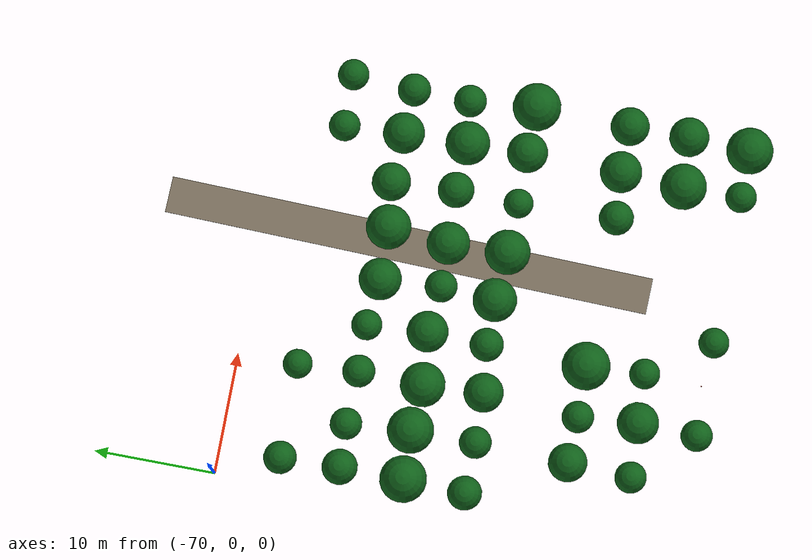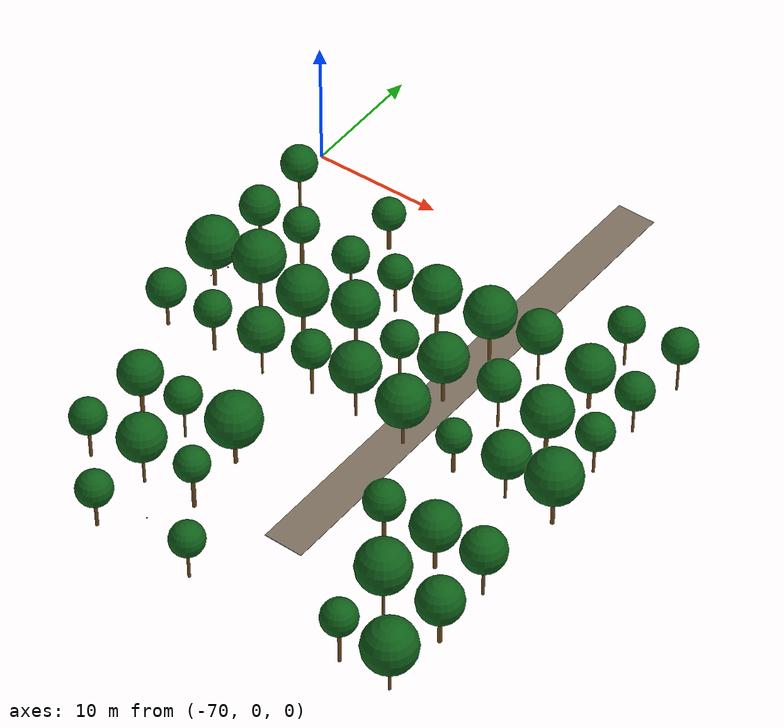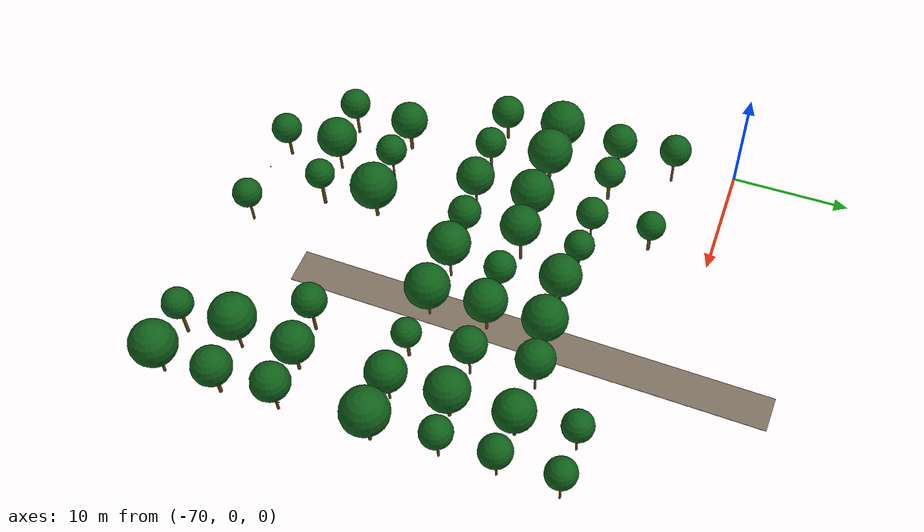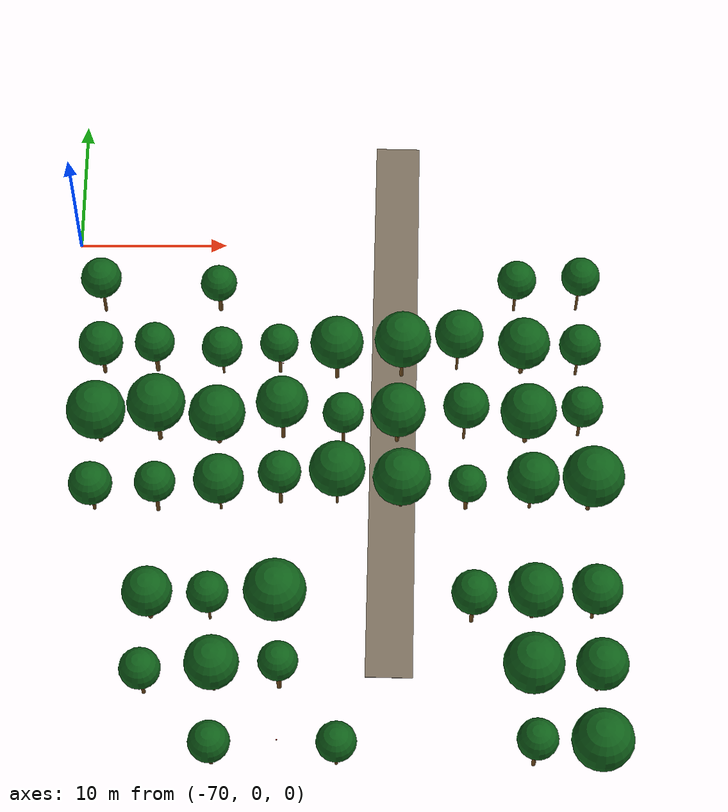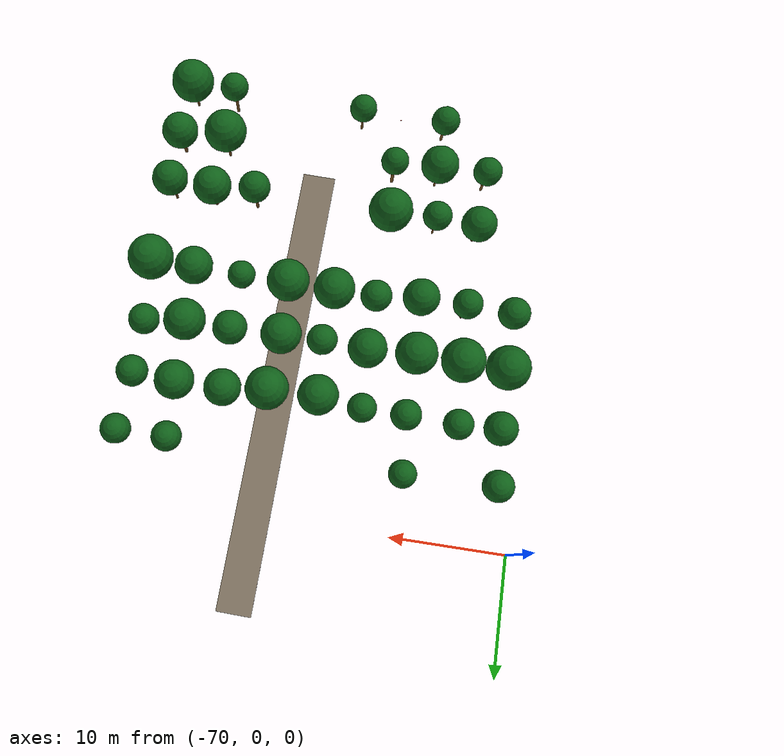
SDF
<sdf version="1.9">
 <world name="cheongsong_orchard">
  <model name="road_15">
   <static>true</static>
   <pose>-48.6 -12.1 0.02 0 0 -1.5989</pose>
   <link name="link">
    <collision name="collision">
     <geometry><box><size>40.5 3.0 0.04</size></box></geometry>
     <surface><friction><ode><mu>0.9</mu><mu2>0.9</mu2></ode></friction></surface>
    </collision>
    <visual name="visual">
     <geometry><box><size>40.5 3.0 0.04</size></box></geometry>
     <material><ambient>0.4 0.35 0.28 1</ambient><diffuse>0.5 0.45 0.38 1</diffuse></material>
    </visual>
   </link>
  </model>
  <model name="apple_tree_849">
   <static>true</static>
   <pose>-60.13 -37.95 0 0 0 0</pose>
   <link name="link">
    <collision name="trunk_col">
     <pose>0 0 1.08 0 0 0</pose>
     <geometry><cylinder><radius>0.122</radius><length>2.16</length></cylinder></geometry>
    </collision>
    <visual name="trunk_vis">
     <pose>0 0 1.08 0 0 0</pose>
     <geometry><cylinder><radius>0.122</radius><length>2.16</length></cylinder></geometry>
     <material><ambient>0.35 0.22 0.08 1</ambient><diffuse>0.45 0.30 0.12 1</diffuse></material>
    </visual>
    <collision name="canopy_col">
     <pose>0 0 3.46 0 0 0</pose>
     <geometry><sphere><radius>1.30</radius></sphere></geometry>
    </collision>
    <visual name="canopy_vis">
     <pose>0 0 3.46 0 0 0</pose>
     <geometry><sphere><radius>1.30</radius></sphere></geometry>
     <material><ambient>0.04 0.28 0.06 1</ambient><diffuse>0.06 0.38 0.10 1</diffuse></material>
    </visual>
   </link>
  </model>
  <model name="apple_tree_851">
   <static>true</static>
   <pose>-52.45 -38.02 0 0 0 0</pose>
   <link name="link">
    <collision name="trunk_col">
     <pose>0 0 1.16 0 0 0</pose>
     <geometry><cylinder><radius>0.103</radius><length>2.32</length></cylinder></geometry>
    </collision>
    <visual name="trunk_vis">
     <pose>0 0 1.16 0 0 0</pose>
     <geometry><cylinder><radius>0.103</radius><length>2.32</length></cylinder></geometry>
     <material><ambient>0.35 0.22 0.08 1</ambient><diffuse>0.45 0.30 0.12 1</diffuse></material>
    </visual>
    <collision name="canopy_col">
     <pose>0 0 3.57 0 0 0</pose>
     <geometry><sphere><radius>1.25</radius></sphere></geometry>
    </collision>
    <visual name="canopy_vis">
     <pose>0 0 3.57 0 0 0</pose>
     <geometry><sphere><radius>1.25</radius></sphere></geometry>
     <material><ambient>0.04 0.28 0.06 1</ambient><diffuse>0.06 0.38 0.10 1</diffuse></material>
    </visual>
   </link>
  </model>
  <model name="apple_tree_854">
   <static>true</static>
   <pose>-40.36 -38.10 0 0 0 0</pose>
   <link name="link">
    <collision name="trunk_col">
     <pose>0 0 1.42 0 0 0</pose>
     <geometry><cylinder><radius>0.130</radius><length>2.84</length></cylinder></geometry>
    </collision>
    <visual name="trunk_vis">
     <pose>0 0 1.42 0 0 0</pose>
     <geometry><cylinder><radius>0.130</radius><length>2.84</length></cylinder></geometry>
     <material><ambient>0.35 0.22 0.08 1</ambient><diffuse>0.45 0.30 0.12 1</diffuse></material>
    </visual>
    <collision name="canopy_col">
     <pose>0 0 4.12 0 0 0</pose>
     <geometry><sphere><radius>1.28</radius></sphere></geometry>
    </collision>
    <visual name="canopy_vis">
     <pose>0 0 4.12 0 0 0</pose>
     <geometry><sphere><radius>1.28</radius></sphere></geometry>
     <material><ambient>0.04 0.28 0.06 1</ambient><diffuse>0.06 0.38 0.10 1</diffuse></material>
    </visual>
   </link>
  </model>
  <model name="apple_tree_855">
   <static>true</static>
   <pose>-36.45 -38.15 0 0 0 0</pose>
   <link name="link">
    <collision name="trunk_col">
     <pose>0 0 1.10 0 0 0</pose>
     <geometry><cylinder><radius>0.111</radius><length>2.19</length></cylinder></geometry>
    </collision>
    <visual name="trunk_vis">
     <pose>0 0 1.10 0 0 0</pose>
     <geometry><cylinder><radius>0.111</radius><length>2.19</length></cylinder></geometry>
     <material><ambient>0.35 0.22 0.08 1</ambient><diffuse>0.45 0.30 0.12 1</diffuse></material>
    </visual>
    <collision name="canopy_col">
     <pose>0 0 4.11 0 0 0</pose>
     <geometry><sphere><radius>1.92</radius></sphere></geometry>
    </collision>
    <visual name="canopy_vis">
     <pose>0 0 4.11 0 0 0</pose>
     <geometry><sphere><radius>1.92</radius></sphere></geometry>
     <material><ambient>0.04 0.28 0.06 1</ambient><diffuse>0.06 0.38 0.10 1</diffuse></material>
    </visual>
   </link>
  </model>
  <model name="apple_tree_903">
   <static>true</static>
   <pose>-64.45 -33.28 0 0 0 0</pose>
   <link name="link">
    <collision name="trunk_col">
     <pose>0 0 1.21 0 0 0</pose>
     <geometry><cylinder><radius>0.117</radius><length>2.42</length></cylinder></geometry>
    </collision>
    <visual name="trunk_vis">
     <pose>0 0 1.21 0 0 0</pose>
     <geometry><cylinder><radius>0.117</radius><length>2.42</length></cylinder></geometry>
     <material><ambient>0.35 0.22 0.08 1</ambient><diffuse>0.45 0.30 0.12 1</diffuse></material>
    </visual>
    <collision name="canopy_col">
     <pose>0 0 3.72 0 0 0</pose>
     <geometry><sphere><radius>1.30</radius></sphere></geometry>
    </collision>
    <visual name="canopy_vis">
     <pose>0 0 3.72 0 0 0</pose>
     <geometry><sphere><radius>1.30</radius></sphere></geometry>
     <material><ambient>0.04 0.28 0.06 1</ambient><diffuse>0.06 0.38 0.10 1</diffuse></material>
    </visual>
   </link>
  </model>
  <model name="apple_tree_904">
   <static>true</static>
   <pose>-60.06 -33.08 0 0 0 0</pose>
   <link name="link">
    <collision name="trunk_col">
     <pose>0 0 1.23 0 0 0</pose>
     <geometry><cylinder><radius>0.100</radius><length>2.47</length></cylinder></geometry>
    </collision>
    <visual name="trunk_vis">
     <pose>0 0 1.23 0 0 0</pose>
     <geometry><cylinder><radius>0.100</radius><length>2.47</length></cylinder></geometry>
     <material><ambient>0.35 0.22 0.08 1</ambient><diffuse>0.45 0.30 0.12 1</diffuse></material>
    </visual>
    <collision name="canopy_col">
     <pose>0 0 4.17 0 0 0</pose>
     <geometry><sphere><radius>1.70</radius></sphere></geometry>
    </collision>
    <visual name="canopy_vis">
     <pose>0 0 4.17 0 0 0</pose>
     <geometry><sphere><radius>1.70</radius></sphere></geometry>
     <material><ambient>0.04 0.28 0.06 1</ambient><diffuse>0.06 0.38 0.10 1</diffuse></material>
    </visual>
   </link>
  </model>
  <model name="apple_tree_905">
   <static>true</static>
   <pose>-56.01 -32.92 0 0 0 0</pose>
   <link name="link">
    <collision name="trunk_col">
     <pose>0 0 1.37 0 0 0</pose>
     <geometry><cylinder><radius>0.146</radius><length>2.74</length></cylinder></geometry>
    </collision>
    <visual name="trunk_vis">
     <pose>0 0 1.37 0 0 0</pose>
     <geometry><cylinder><radius>0.146</radius><length>2.74</length></cylinder></geometry>
     <material><ambient>0.35 0.22 0.08 1</ambient><diffuse>0.45 0.30 0.12 1</diffuse></material>
    </visual>
    <collision name="canopy_col">
     <pose>0 0 3.99 0 0 0</pose>
     <geometry><sphere><radius>1.25</radius></sphere></geometry>
    </collision>
    <visual name="canopy_vis">
     <pose>0 0 3.99 0 0 0</pose>
     <geometry><sphere><radius>1.25</radius></sphere></geometry>
     <material><ambient>0.04 0.28 0.06 1</ambient><diffuse>0.06 0.38 0.10 1</diffuse></material>
    </visual>
   </link>
  </model>
  <model name="apple_tree_906">
   <static>true</static>
   <pose>-40.42 -33.32 0 0 0 0</pose>
   <link name="link">
    <collision name="trunk_col">
     <pose>0 0 1.31 0 0 0</pose>
     <geometry><cylinder><radius>0.115</radius><length>2.63</length></cylinder></geometry>
    </collision>
    <visual name="trunk_vis">
     <pose>0 0 1.31 0 0 0</pose>
     <geometry><cylinder><radius>0.115</radius><length>2.63</length></cylinder></geometry>
     <material><ambient>0.35 0.22 0.08 1</ambient><diffuse>0.45 0.30 0.12 1</diffuse></material>
    </visual>
    <collision name="canopy_col">
     <pose>0 0 4.53 0 0 0</pose>
     <geometry><sphere><radius>1.90</radius></sphere></geometry>
    </collision>
    <visual name="canopy_vis">
     <pose>0 0 4.53 0 0 0</pose>
     <geometry><sphere><radius>1.90</radius></sphere></geometry>
     <material><ambient>0.04 0.28 0.06 1</ambient><diffuse>0.06 0.38 0.10 1</diffuse></material>
    </visual>
   </link>
  </model>
  <model name="apple_tree_907">
   <static>true</static>
   <pose>-36.18 -33.11 0 0 0 0</pose>
   <link name="link">
    <collision name="trunk_col">
     <pose>0 0 1.12 0 0 0</pose>
     <geometry><cylinder><radius>0.148</radius><length>2.24</length></cylinder></geometry>
    </collision>
    <visual name="trunk_vis">
     <pose>0 0 1.12 0 0 0</pose>
     <geometry><cylinder><radius>0.148</radius><length>2.24</length></cylinder></geometry>
     <material><ambient>0.35 0.22 0.08 1</ambient><diffuse>0.45 0.30 0.12 1</diffuse></material>
    </visual>
    <collision name="canopy_col">
     <pose>0 0 3.87 0 0 0</pose>
     <geometry><sphere><radius>1.63</radius></sphere></geometry>
    </collision>
    <visual name="canopy_vis">
     <pose>0 0 3.87 0 0 0</pose>
     <geometry><sphere><radius>1.63</radius></sphere></geometry>
     <material><ambient>0.04 0.28 0.06 1</ambient><diffuse>0.06 0.38 0.10 1</diffuse></material>
    </visual>
   </link>
  </model>
  <model name="apple_tree_955">
   <static>true</static>
   <pose>-64.20 -28.08 0 0 0 0</pose>
   <link name="link">
    <collision name="trunk_col">
     <pose>0 0 1.06 0 0 0</pose>
     <geometry><cylinder><radius>0.150</radius><length>2.12</length></cylinder></geometry>
    </collision>
    <visual name="trunk_vis">
     <pose>0 0 1.06 0 0 0</pose>
     <geometry><cylinder><radius>0.150</radius><length>2.12</length></cylinder></geometry>
     <material><ambient>0.35 0.22 0.08 1</ambient><diffuse>0.45 0.30 0.12 1</diffuse></material>
    </visual>
    <collision name="canopy_col">
     <pose>0 0 3.72 0 0 0</pose>
     <geometry><sphere><radius>1.59</radius></sphere></geometry>
    </collision>
    <visual name="canopy_vis">
     <pose>0 0 3.72 0 0 0</pose>
     <geometry><sphere><radius>1.59</radius></sphere></geometry>
     <material><ambient>0.04 0.28 0.06 1</ambient><diffuse>0.06 0.38 0.10 1</diffuse></material>
    </visual>
   </link>
  </model>
  <model name="apple_tree_956">
   <static>true</static>
   <pose>-60.43 -28.23 0 0 0 0</pose>
   <link name="link">
    <collision name="trunk_col">
     <pose>0 0 1.30 0 0 0</pose>
     <geometry><cylinder><radius>0.086</radius><length>2.59</length></cylinder></geometry>
    </collision>
    <visual name="trunk_vis">
     <pose>0 0 1.30 0 0 0</pose>
     <geometry><cylinder><radius>0.086</radius><length>2.59</length></cylinder></geometry>
     <material><ambient>0.35 0.22 0.08 1</ambient><diffuse>0.45 0.30 0.12 1</diffuse></material>
    </visual>
    <collision name="canopy_col">
     <pose>0 0 3.91 0 0 0</pose>
     <geometry><sphere><radius>1.31</radius></sphere></geometry>
    </collision>
    <visual name="canopy_vis">
     <pose>0 0 3.91 0 0 0</pose>
     <geometry><sphere><radius>1.31</radius></sphere></geometry>
     <material><ambient>0.04 0.28 0.06 1</ambient><diffuse>0.06 0.38 0.10 1</diffuse></material>
    </visual>
   </link>
  </model>
  <model name="apple_tree_957">
   <static>true</static>
   <pose>-56.25 -28.14 0 0 0 0</pose>
   <link name="link">
    <collision name="trunk_col">
     <pose>0 0 1.02 0 0 0</pose>
     <geometry><cylinder><radius>0.145</radius><length>2.05</length></cylinder></geometry>
    </collision>
    <visual name="trunk_vis">
     <pose>0 0 1.02 0 0 0</pose>
     <geometry><cylinder><radius>0.145</radius><length>2.05</length></cylinder></geometry>
     <material><ambient>0.35 0.22 0.08 1</ambient><diffuse>0.45 0.30 0.12 1</diffuse></material>
    </visual>
    <collision name="canopy_col">
     <pose>0 0 4.03 0 0 0</pose>
     <geometry><sphere><radius>1.98</radius></sphere></geometry>
    </collision>
    <visual name="canopy_vis">
     <pose>0 0 4.03 0 0 0</pose>
     <geometry><sphere><radius>1.98</radius></sphere></geometry>
     <material><ambient>0.04 0.28 0.06 1</ambient><diffuse>0.06 0.38 0.10 1</diffuse></material>
    </visual>
   </link>
  </model>
  <model name="apple_tree_958">
   <static>true</static>
   <pose>-43.90 -28.42 0 0 0 0</pose>
   <link name="link">
    <collision name="trunk_col">
     <pose>0 0 1.38 0 0 0</pose>
     <geometry><cylinder><radius>0.131</radius><length>2.77</length></cylinder></geometry>
    </collision>
    <visual name="trunk_vis">
     <pose>0 0 1.38 0 0 0</pose>
     <geometry><cylinder><radius>0.131</radius><length>2.77</length></cylinder></geometry>
     <material><ambient>0.35 0.22 0.08 1</ambient><diffuse>0.45 0.30 0.12 1</diffuse></material>
    </visual>
    <collision name="canopy_col">
     <pose>0 0 4.19 0 0 0</pose>
     <geometry><sphere><radius>1.42</radius></sphere></geometry>
    </collision>
    <visual name="canopy_vis">
     <pose>0 0 4.19 0 0 0</pose>
     <geometry><sphere><radius>1.42</radius></sphere></geometry>
     <material><ambient>0.04 0.28 0.06 1</ambient><diffuse>0.06 0.38 0.10 1</diffuse></material>
    </visual>
   </link>
  </model>
  <model name="apple_tree_959">
   <static>true</static>
   <pose>-40.06 -28.14 0 0 0 0</pose>
   <link name="link">
    <collision name="trunk_col">
     <pose>0 0 1.11 0 0 0</pose>
     <geometry><cylinder><radius>0.135</radius><length>2.22</length></cylinder></geometry>
    </collision>
    <visual name="trunk_vis">
     <pose>0 0 1.11 0 0 0</pose>
     <geometry><cylinder><radius>0.135</radius><length>2.22</length></cylinder></geometry>
     <material><ambient>0.35 0.22 0.08 1</ambient><diffuse>0.45 0.30 0.12 1</diffuse></material>
    </visual>
    <collision name="canopy_col">
     <pose>0 0 3.93 0 0 0</pose>
     <geometry><sphere><radius>1.72</radius></sphere></geometry>
    </collision>
    <visual name="canopy_vis">
     <pose>0 0 3.93 0 0 0</pose>
     <geometry><sphere><radius>1.72</radius></sphere></geometry>
     <material><ambient>0.04 0.28 0.06 1</ambient><diffuse>0.06 0.38 0.10 1</diffuse></material>
    </visual>
   </link>
  </model>
  <model name="apple_tree_960">
   <static>true</static>
   <pose>-36.25 -28.20 0 0 0 0</pose>
   <link name="link">
    <collision name="trunk_col">
     <pose>0 0 1.27 0 0 0</pose>
     <geometry><cylinder><radius>0.108</radius><length>2.54</length></cylinder></geometry>
    </collision>
    <visual name="trunk_vis">
     <pose>0 0 1.27 0 0 0</pose>
     <geometry><cylinder><radius>0.108</radius><length>2.54</length></cylinder></geometry>
     <material><ambient>0.35 0.22 0.08 1</ambient><diffuse>0.45 0.30 0.12 1</diffuse></material>
    </visual>
    <collision name="canopy_col">
     <pose>0 0 4.13 0 0 0</pose>
     <geometry><sphere><radius>1.59</radius></sphere></geometry>
    </collision>
    <visual name="canopy_vis">
     <pose>0 0 4.13 0 0 0</pose>
     <geometry><sphere><radius>1.59</radius></sphere></geometry>
     <material><ambient>0.04 0.28 0.06 1</ambient><diffuse>0.06 0.38 0.10 1</diffuse></material>
    </visual>
   </link>
  </model>
  <model name="apple_tree_1011">
   <static>true</static>
   <pose>-68.12 -20.35 0 0 0 0</pose>
   <link name="link">
    <collision name="trunk_col">
     <pose>0 0 1.02 0 0 0</pose>
     <geometry><cylinder><radius>0.112</radius><length>2.04</length></cylinder></geometry>
    </collision>
    <visual name="trunk_vis">
     <pose>0 0 1.02 0 0 0</pose>
     <geometry><cylinder><radius>0.112</radius><length>2.04</length></cylinder></geometry>
     <material><ambient>0.35 0.22 0.08 1</ambient><diffuse>0.45 0.30 0.12 1</diffuse></material>
    </visual>
    <collision name="canopy_col">
     <pose>0 0 3.45 0 0 0</pose>
     <geometry><sphere><radius>1.41</radius></sphere></geometry>
    </collision>
    <visual name="canopy_vis">
     <pose>0 0 3.45 0 0 0</pose>
     <geometry><sphere><radius>1.41</radius></sphere></geometry>
     <material><ambient>0.04 0.28 0.06 1</ambient><diffuse>0.06 0.38 0.10 1</diffuse></material>
    </visual>
   </link>
  </model>
  <model name="apple_tree_1012">
   <static>true</static>
   <pose>-63.98 -20.46 0 0 0 0</pose>
   <link name="link">
    <collision name="trunk_col">
     <pose>0 0 1.28 0 0 0</pose>
     <geometry><cylinder><radius>0.122</radius><length>2.55</length></cylinder></geometry>
    </collision>
    <visual name="trunk_vis">
     <pose>0 0 1.28 0 0 0</pose>
     <geometry><cylinder><radius>0.122</radius><length>2.55</length></cylinder></geometry>
     <material><ambient>0.35 0.22 0.08 1</ambient><diffuse>0.45 0.30 0.12 1</diffuse></material>
    </visual>
    <collision name="canopy_col">
     <pose>0 0 3.87 0 0 0</pose>
     <geometry><sphere><radius>1.32</radius></sphere></geometry>
    </collision>
    <visual name="canopy_vis">
     <pose>0 0 3.87 0 0 0</pose>
     <geometry><sphere><radius>1.32</radius></sphere></geometry>
     <material><ambient>0.04 0.28 0.06 1</ambient><diffuse>0.06 0.38 0.10 1</diffuse></material>
    </visual>
   </link>
  </model>
  <model name="apple_tree_1013">
   <static>true</static>
   <pose>-59.91 -20.39 0 0 0 0</pose>
   <link name="link">
    <collision name="trunk_col">
     <pose>0 0 1.25 0 0 0</pose>
     <geometry><cylinder><radius>0.081</radius><length>2.50</length></cylinder></geometry>
    </collision>
    <visual name="trunk_vis">
     <pose>0 0 1.25 0 0 0</pose>
     <geometry><cylinder><radius>0.081</radius><length>2.50</length></cylinder></geometry>
     <material><ambient>0.35 0.22 0.08 1</ambient><diffuse>0.45 0.30 0.12 1</diffuse></material>
    </visual>
    <collision name="canopy_col">
     <pose>0 0 4.12 0 0 0</pose>
     <geometry><sphere><radius>1.62</radius></sphere></geometry>
    </collision>
    <visual name="canopy_vis">
     <pose>0 0 4.12 0 0 0</pose>
     <geometry><sphere><radius>1.62</radius></sphere></geometry>
     <material><ambient>0.04 0.28 0.06 1</ambient><diffuse>0.06 0.38 0.10 1</diffuse></material>
    </visual>
   </link>
  </model>
  <model name="apple_tree_1014">
   <static>true</static>
   <pose>-56.03 -19.93 0 0 0 0</pose>
   <link name="link">
    <collision name="trunk_col">
     <pose>0 0 1.38 0 0 0</pose>
     <geometry><cylinder><radius>0.115</radius><length>2.76</length></cylinder></geometry>
    </collision>
    <visual name="trunk_vis">
     <pose>0 0 1.38 0 0 0</pose>
     <geometry><cylinder><radius>0.115</radius><length>2.76</length></cylinder></geometry>
     <material><ambient>0.35 0.22 0.08 1</ambient><diffuse>0.45 0.30 0.12 1</diffuse></material>
    </visual>
    <collision name="canopy_col">
     <pose>0 0 4.14 0 0 0</pose>
     <geometry><sphere><radius>1.38</radius></sphere></geometry>
    </collision>
    <visual name="canopy_vis">
     <pose>0 0 4.14 0 0 0</pose>
     <geometry><sphere><radius>1.38</radius></sphere></geometry>
     <material><ambient>0.04 0.28 0.06 1</ambient><diffuse>0.06 0.38 0.10 1</diffuse></material>
    </visual>
   </link>
  </model>
  <model name="apple_tree_1015">
   <static>true</static>
   <pose>-52.37 -19.92 0 0 0 0</pose>
   <link name="link">
    <collision name="trunk_col">
     <pose>0 0 1.37 0 0 0</pose>
     <geometry><cylinder><radius>0.099</radius><length>2.74</length></cylinder></geometry>
    </collision>
    <visual name="trunk_vis">
     <pose>0 0 1.37 0 0 0</pose>
     <geometry><cylinder><radius>0.099</radius><length>2.74</length></cylinder></geometry>
     <material><ambient>0.35 0.22 0.08 1</ambient><diffuse>0.45 0.30 0.12 1</diffuse></material>
    </visual>
    <collision name="canopy_col">
     <pose>0 0 4.54 0 0 0</pose>
     <geometry><sphere><radius>1.80</radius></sphere></geometry>
    </collision>
    <visual name="canopy_vis">
     <pose>0 0 4.54 0 0 0</pose>
     <geometry><sphere><radius>1.80</radius></sphere></geometry>
     <material><ambient>0.04 0.28 0.06 1</ambient><diffuse>0.06 0.38 0.10 1</diffuse></material>
    </visual>
   </link>
  </model>
  <model name="apple_tree_1016">
   <static>true</static>
   <pose>-48.26 -20.23 0 0 0 0</pose>
   <link name="link">
    <collision name="trunk_col">
     <pose>0 0 1.08 0 0 0</pose>
     <geometry><cylinder><radius>0.095</radius><length>2.15</length></cylinder></geometry>
    </collision>
    <visual name="trunk_vis">
     <pose>0 0 1.08 0 0 0</pose>
     <geometry><cylinder><radius>0.095</radius><length>2.15</length></cylinder></geometry>
     <material><ambient>0.35 0.22 0.08 1</ambient><diffuse>0.45 0.30 0.12 1</diffuse></material>
    </visual>
    <collision name="canopy_col">
     <pose>0 0 4.01 0 0 0</pose>
     <geometry><sphere><radius>1.86</radius></sphere></geometry>
    </collision>
    <visual name="canopy_vis">
     <pose>0 0 4.01 0 0 0</pose>
     <geometry><sphere><radius>1.86</radius></sphere></geometry>
     <material><ambient>0.04 0.28 0.06 1</ambient><diffuse>0.06 0.38 0.10 1</diffuse></material>
    </visual>
   </link>
  </model>
  <model name="apple_tree_1017">
   <static>true</static>
   <pose>-44.05 -20.38 0 0 0 0</pose>
   <link name="link">
    <collision name="trunk_col">
     <pose>0 0 1.06 0 0 0</pose>
     <geometry><cylinder><radius>0.135</radius><length>2.13</length></cylinder></geometry>
    </collision>
    <visual name="trunk_vis">
     <pose>0 0 1.06 0 0 0</pose>
     <geometry><cylinder><radius>0.135</radius><length>2.13</length></cylinder></geometry>
     <material><ambient>0.35 0.22 0.08 1</ambient><diffuse>0.45 0.30 0.12 1</diffuse></material>
    </visual>
    <collision name="canopy_col">
     <pose>0 0 3.35 0 0 0</pose>
     <geometry><sphere><radius>1.22</radius></sphere></geometry>
    </collision>
    <visual name="canopy_vis">
     <pose>0 0 3.35 0 0 0</pose>
     <geometry><sphere><radius>1.22</radius></sphere></geometry>
     <material><ambient>0.04 0.28 0.06 1</ambient><diffuse>0.06 0.38 0.10 1</diffuse></material>
    </visual>
   </link>
  </model>
  <model name="apple_tree_1018">
   <static>true</static>
   <pose>-39.90 -20.35 0 0 0 0</pose>
   <link name="link">
    <collision name="trunk_col">
     <pose>0 0 1.19 0 0 0</pose>
     <geometry><cylinder><radius>0.097</radius><length>2.39</length></cylinder></geometry>
    </collision>
    <visual name="trunk_vis">
     <pose>0 0 1.19 0 0 0</pose>
     <geometry><cylinder><radius>0.097</radius><length>2.39</length></cylinder></geometry>
     <material><ambient>0.35 0.22 0.08 1</ambient><diffuse>0.45 0.30 0.12 1</diffuse></material>
    </visual>
    <collision name="canopy_col">
     <pose>0 0 4.06 0 0 0</pose>
     <geometry><sphere><radius>1.67</radius></sphere></geometry>
    </collision>
    <visual name="canopy_vis">
     <pose>0 0 4.06 0 0 0</pose>
     <geometry><sphere><radius>1.67</radius></sphere></geometry>
     <material><ambient>0.04 0.28 0.06 1</ambient><diffuse>0.06 0.38 0.10 1</diffuse></material>
    </visual>
   </link>
  </model>
  <model name="apple_tree_1019">
   <static>true</static>
   <pose>-36.10 -20.44 0 0 0 0</pose>
   <link name="link">
    <collision name="trunk_col">
     <pose>0 0 1.20 0 0 0</pose>
     <geometry><cylinder><radius>0.141</radius><length>2.41</length></cylinder></geometry>
    </collision>
    <visual name="trunk_vis">
     <pose>0 0 1.20 0 0 0</pose>
     <geometry><cylinder><radius>0.141</radius><length>2.41</length></cylinder></geometry>
     <material><ambient>0.35 0.22 0.08 1</ambient><diffuse>0.45 0.30 0.12 1</diffuse></material>
    </visual>
    <collision name="canopy_col">
     <pose>0 0 4.39 0 0 0</pose>
     <geometry><sphere><radius>1.98</radius></sphere></geometry>
    </collision>
    <visual name="canopy_vis">
     <pose>0 0 4.39 0 0 0</pose>
     <geometry><sphere><radius>1.98</radius></sphere></geometry>
     <material><ambient>0.04 0.28 0.06 1</ambient><diffuse>0.06 0.38 0.10 1</diffuse></material>
    </visual>
   </link>
  </model>
  <model name="apple_tree_1070">
   <static>true</static>
   <pose>-67.96 -15.28 0 0 0 0</pose>
   <link name="link">
    <collision name="trunk_col">
     <pose>0 0 1.05 0 0 0</pose>
     <geometry><cylinder><radius>0.138</radius><length>2.10</length></cylinder></geometry>
    </collision>
    <visual name="trunk_vis">
     <pose>0 0 1.05 0 0 0</pose>
     <geometry><cylinder><radius>0.138</radius><length>2.10</length></cylinder></geometry>
     <material><ambient>0.35 0.22 0.08 1</ambient><diffuse>0.45 0.30 0.12 1</diffuse></material>
    </visual>
    <collision name="canopy_col">
     <pose>0 0 4.02 0 0 0</pose>
     <geometry><sphere><radius>1.92</radius></sphere></geometry>
    </collision>
    <visual name="canopy_vis">
     <pose>0 0 4.02 0 0 0</pose>
     <geometry><sphere><radius>1.92</radius></sphere></geometry>
     <material><ambient>0.04 0.28 0.06 1</ambient><diffuse>0.06 0.38 0.10 1</diffuse></material>
    </visual>
   </link>
  </model>
  <model name="apple_tree_1071">
   <static>true</static>
   <pose>-64.03 -15.16 0 0 0 0</pose>
   <link name="link">
    <collision name="trunk_col">
     <pose>0 0 1.41 0 0 0</pose>
     <geometry><cylinder><radius>0.140</radius><length>2.82</length></cylinder></geometry>
    </collision>
    <visual name="trunk_vis">
     <pose>0 0 1.41 0 0 0</pose>
     <geometry><cylinder><radius>0.140</radius><length>2.82</length></cylinder></geometry>
     <material><ambient>0.35 0.22 0.08 1</ambient><diffuse>0.45 0.30 0.12 1</diffuse></material>
    </visual>
    <collision name="canopy_col">
     <pose>0 0 4.72 0 0 0</pose>
     <geometry><sphere><radius>1.90</radius></sphere></geometry>
    </collision>
    <visual name="canopy_vis">
     <pose>0 0 4.72 0 0 0</pose>
     <geometry><sphere><radius>1.90</radius></sphere></geometry>
     <material><ambient>0.04 0.28 0.06 1</ambient><diffuse>0.06 0.38 0.10 1</diffuse></material>
    </visual>
   </link>
  </model>
  <model name="apple_tree_1072">
   <static>true</static>
   <pose>-60.13 -15.43 0 0 0 0</pose>
   <link name="link">
    <collision name="trunk_col">
     <pose>0 0 1.00 0 0 0</pose>
     <geometry><cylinder><radius>0.146</radius><length>2.00</length></cylinder></geometry>
    </collision>
    <visual name="trunk_vis">
     <pose>0 0 1.00 0 0 0</pose>
     <geometry><cylinder><radius>0.146</radius><length>2.00</length></cylinder></geometry>
     <material><ambient>0.35 0.22 0.08 1</ambient><diffuse>0.45 0.30 0.12 1</diffuse></material>
    </visual>
    <collision name="canopy_col">
     <pose>0 0 3.84 0 0 0</pose>
     <geometry><sphere><radius>1.84</radius></sphere></geometry>
    </collision>
    <visual name="canopy_vis">
     <pose>0 0 3.84 0 0 0</pose>
     <geometry><sphere><radius>1.84</radius></sphere></geometry>
     <material><ambient>0.04 0.28 0.06 1</ambient><diffuse>0.06 0.38 0.10 1</diffuse></material>
    </visual>
   </link>
  </model>
  <model name="apple_tree_1073">
   <static>true</static>
   <pose>-55.91 -15.04 0 0 0 0</pose>
   <link name="link">
    <collision name="trunk_col">
     <pose>0 0 1.45 0 0 0</pose>
     <geometry><cylinder><radius>0.135</radius><length>2.90</length></cylinder></geometry>
    </collision>
    <visual name="trunk_vis">
     <pose>0 0 1.45 0 0 0</pose>
     <geometry><cylinder><radius>0.135</radius><length>2.90</length></cylinder></geometry>
     <material><ambient>0.35 0.22 0.08 1</ambient><diffuse>0.45 0.30 0.12 1</diffuse></material>
    </visual>
    <collision name="canopy_col">
     <pose>0 0 4.59 0 0 0</pose>
     <geometry><sphere><radius>1.69</radius></sphere></geometry>
    </collision>
    <visual name="canopy_vis">
     <pose>0 0 4.59 0 0 0</pose>
     <geometry><sphere><radius>1.69</radius></sphere></geometry>
     <material><ambient>0.04 0.28 0.06 1</ambient><diffuse>0.06 0.38 0.10 1</diffuse></material>
    </visual>
   </link>
  </model>
  <model name="apple_tree_1074">
   <static>true</static>
   <pose>-51.97 -15.43 0 0 0 0</pose>
   <link name="link">
    <collision name="trunk_col">
     <pose>0 0 1.25 0 0 0</pose>
     <geometry><cylinder><radius>0.116</radius><length>2.50</length></cylinder></geometry>
    </collision>
    <visual name="trunk_vis">
     <pose>0 0 1.25 0 0 0</pose>
     <geometry><cylinder><radius>0.116</radius><length>2.50</length></cylinder></geometry>
     <material><ambient>0.35 0.22 0.08 1</ambient><diffuse>0.45 0.30 0.12 1</diffuse></material>
    </visual>
    <collision name="canopy_col">
     <pose>0 0 3.83 0 0 0</pose>
     <geometry><sphere><radius>1.33</radius></sphere></geometry>
    </collision>
    <visual name="canopy_vis">
     <pose>0 0 3.83 0 0 0</pose>
     <geometry><sphere><radius>1.33</radius></sphere></geometry>
     <material><ambient>0.04 0.28 0.06 1</ambient><diffuse>0.06 0.38 0.10 1</diffuse></material>
    </visual>
   </link>
  </model>
  <model name="apple_tree_1075">
   <static>true</static>
   <pose>-48.42 -15.37 0 0 0 0</pose>
   <link name="link">
    <collision name="trunk_col">
     <pose>0 0 1.15 0 0 0</pose>
     <geometry><cylinder><radius>0.131</radius><length>2.30</length></cylinder></geometry>
    </collision>
    <visual name="trunk_vis">
     <pose>0 0 1.15 0 0 0</pose>
     <geometry><cylinder><radius>0.131</radius><length>2.30</length></cylinder></geometry>
     <material><ambient>0.35 0.22 0.08 1</ambient><diffuse>0.45 0.30 0.12 1</diffuse></material>
    </visual>
    <collision name="canopy_col">
     <pose>0 0 4.07 0 0 0</pose>
     <geometry><sphere><radius>1.77</radius></sphere></geometry>
    </collision>
    <visual name="canopy_vis">
     <pose>0 0 4.07 0 0 0</pose>
     <geometry><sphere><radius>1.77</radius></sphere></geometry>
     <material><ambient>0.04 0.28 0.06 1</ambient><diffuse>0.06 0.38 0.10 1</diffuse></material>
    </visual>
   </link>
  </model>
  <model name="apple_tree_1076">
   <static>true</static>
   <pose>-44.03 -15.19 0 0 0 0</pose>
   <link name="link">
    <collision name="trunk_col">
     <pose>0 0 1.40 0 0 0</pose>
     <geometry><cylinder><radius>0.091</radius><length>2.80</length></cylinder></geometry>
    </collision>
    <visual name="trunk_vis">
     <pose>0 0 1.40 0 0 0</pose>
     <geometry><cylinder><radius>0.091</radius><length>2.80</length></cylinder></geometry>
     <material><ambient>0.35 0.22 0.08 1</ambient><diffuse>0.45 0.30 0.12 1</diffuse></material>
    </visual>
    <collision name="canopy_col">
     <pose>0 0 4.29 0 0 0</pose>
     <geometry><sphere><radius>1.49</radius></sphere></geometry>
    </collision>
    <visual name="canopy_vis">
     <pose>0 0 4.29 0 0 0</pose>
     <geometry><sphere><radius>1.49</radius></sphere></geometry>
     <material><ambient>0.04 0.28 0.06 1</ambient><diffuse>0.06 0.38 0.10 1</diffuse></material>
    </visual>
   </link>
  </model>
  <model name="apple_tree_1077">
   <static>true</static>
   <pose>-40.00 -15.42 0 0 0 0</pose>
   <link name="link">
    <collision name="trunk_col">
     <pose>0 0 1.07 0 0 0</pose>
     <geometry><cylinder><radius>0.148</radius><length>2.15</length></cylinder></geometry>
    </collision>
    <visual name="trunk_vis">
     <pose>0 0 1.07 0 0 0</pose>
     <geometry><cylinder><radius>0.148</radius><length>2.15</length></cylinder></geometry>
     <material><ambient>0.35 0.22 0.08 1</ambient><diffuse>0.45 0.30 0.12 1</diffuse></material>
    </visual>
    <collision name="canopy_col">
     <pose>0 0 3.96 0 0 0</pose>
     <geometry><sphere><radius>1.82</radius></sphere></geometry>
    </collision>
    <visual name="canopy_vis">
     <pose>0 0 3.96 0 0 0</pose>
     <geometry><sphere><radius>1.82</radius></sphere></geometry>
     <material><ambient>0.04 0.28 0.06 1</ambient><diffuse>0.06 0.38 0.10 1</diffuse></material>
    </visual>
   </link>
  </model>
  <model name="apple_tree_1078">
   <static>true</static>
   <pose>-36.49 -14.99 0 0 0 0</pose>
   <link name="link">
    <collision name="trunk_col">
     <pose>0 0 1.21 0 0 0</pose>
     <geometry><cylinder><radius>0.100</radius><length>2.41</length></cylinder></geometry>
    </collision>
    <visual name="trunk_vis">
     <pose>0 0 1.21 0 0 0</pose>
     <geometry><cylinder><radius>0.100</radius><length>2.41</length></cylinder></geometry>
     <material><ambient>0.35 0.22 0.08 1</ambient><diffuse>0.45 0.30 0.12 1</diffuse></material>
    </visual>
    <collision name="canopy_col">
     <pose>0 0 3.75 0 0 0</pose>
     <geometry><sphere><radius>1.34</radius></sphere></geometry>
    </collision>
    <visual name="canopy_vis">
     <pose>0 0 3.75 0 0 0</pose>
     <geometry><sphere><radius>1.34</radius></sphere></geometry>
     <material><ambient>0.04 0.28 0.06 1</ambient><diffuse>0.06 0.38 0.10 1</diffuse></material>
    </visual>
   </link>
  </model>
  <model name="apple_tree_1127">
   <static>true</static>
   <pose>-67.90 -10.06 0 0 0 0</pose>
   <link name="link">
    <collision name="trunk_col">
     <pose>0 0 1.11 0 0 0</pose>
     <geometry><cylinder><radius>0.126</radius><length>2.22</length></cylinder></geometry>
    </collision>
    <visual name="trunk_vis">
     <pose>0 0 1.11 0 0 0</pose>
     <geometry><cylinder><radius>0.126</radius><length>2.22</length></cylinder></geometry>
     <material><ambient>0.35 0.22 0.08 1</ambient><diffuse>0.45 0.30 0.12 1</diffuse></material>
    </visual>
    <collision name="canopy_col">
     <pose>0 0 3.67 0 0 0</pose>
     <geometry><sphere><radius>1.46</radius></sphere></geometry>
    </collision>
    <visual name="canopy_vis">
     <pose>0 0 3.67 0 0 0</pose>
     <geometry><sphere><radius>1.46</radius></sphere></geometry>
     <material><ambient>0.04 0.28 0.06 1</ambient><diffuse>0.06 0.38 0.10 1</diffuse></material>
    </visual>
   </link>
  </model>
  <model name="apple_tree_1128">
   <static>true</static>
   <pose>-64.36 -9.91 0 0 0 0</pose>
   <link name="link">
    <collision name="trunk_col">
     <pose>0 0 1.14 0 0 0</pose>
     <geometry><cylinder><radius>0.144</radius><length>2.27</length></cylinder></geometry>
    </collision>
    <visual name="trunk_vis">
     <pose>0 0 1.14 0 0 0</pose>
     <geometry><cylinder><radius>0.144</radius><length>2.27</length></cylinder></geometry>
     <material><ambient>0.35 0.22 0.08 1</ambient><diffuse>0.45 0.30 0.12 1</diffuse></material>
    </visual>
    <collision name="canopy_col">
     <pose>0 0 3.58 0 0 0</pose>
     <geometry><sphere><radius>1.31</radius></sphere></geometry>
    </collision>
    <visual name="canopy_vis">
     <pose>0 0 3.58 0 0 0</pose>
     <geometry><sphere><radius>1.31</radius></sphere></geometry>
     <material><ambient>0.04 0.28 0.06 1</ambient><diffuse>0.06 0.38 0.10 1</diffuse></material>
    </visual>
   </link>
  </model>
  <model name="apple_tree_1129">
   <static>true</static>
   <pose>-59.94 -10.12 0 0 0 0</pose>
   <link name="link">
    <collision name="trunk_col">
     <pose>0 0 0.98 0 0 0</pose>
     <geometry><cylinder><radius>0.081</radius><length>1.95</length></cylinder></geometry>
    </collision>
    <visual name="trunk_vis">
     <pose>0 0 0.98 0 0 0</pose>
     <geometry><cylinder><radius>0.081</radius><length>1.95</length></cylinder></geometry>
     <material><ambient>0.35 0.22 0.08 1</ambient><diffuse>0.45 0.30 0.12 1</diffuse></material>
    </visual>
    <collision name="canopy_col">
     <pose>0 0 3.29 0 0 0</pose>
     <geometry><sphere><radius>1.34</radius></sphere></geometry>
    </collision>
    <visual name="canopy_vis">
     <pose>0 0 3.29 0 0 0</pose>
     <geometry><sphere><radius>1.34</radius></sphere></geometry>
     <material><ambient>0.04 0.28 0.06 1</ambient><diffuse>0.06 0.38 0.10 1</diffuse></material>
    </visual>
   </link>
  </model>
  <model name="apple_tree_1130">
   <static>true</static>
   <pose>-56.16 -10.07 0 0 0 0</pose>
   <link name="link">
    <collision name="trunk_col">
     <pose>0 0 1.21 0 0 0</pose>
     <geometry><cylinder><radius>0.107</radius><length>2.43</length></cylinder></geometry>
    </collision>
    <visual name="trunk_vis">
     <pose>0 0 1.21 0 0 0</pose>
     <geometry><cylinder><radius>0.107</radius><length>2.43</length></cylinder></geometry>
     <material><ambient>0.35 0.22 0.08 1</ambient><diffuse>0.45 0.30 0.12 1</diffuse></material>
    </visual>
    <collision name="canopy_col">
     <pose>0 0 3.69 0 0 0</pose>
     <geometry><sphere><radius>1.26</radius></sphere></geometry>
    </collision>
    <visual name="canopy_vis">
     <pose>0 0 3.69 0 0 0</pose>
     <geometry><sphere><radius>1.26</radius></sphere></geometry>
     <material><ambient>0.04 0.28 0.06 1</ambient><diffuse>0.06 0.38 0.10 1</diffuse></material>
    </visual>
   </link>
  </model>
  <model name="apple_tree_1131">
   <static>true</static>
   <pose>-52.37 -10.48 0 0 0 0</pose>
   <link name="link">
    <collision name="trunk_col">
     <pose>0 0 1.34 0 0 0</pose>
     <geometry><cylinder><radius>0.133</radius><length>2.67</length></cylinder></geometry>
    </collision>
    <visual name="trunk_vis">
     <pose>0 0 1.34 0 0 0</pose>
     <geometry><cylinder><radius>0.133</radius><length>2.67</length></cylinder></geometry>
     <material><ambient>0.35 0.22 0.08 1</ambient><diffuse>0.45 0.30 0.12 1</diffuse></material>
    </visual>
    <collision name="canopy_col">
     <pose>0 0 4.42 0 0 0</pose>
     <geometry><sphere><radius>1.74</radius></sphere></geometry>
    </collision>
    <visual name="canopy_vis">
     <pose>0 0 4.42 0 0 0</pose>
     <geometry><sphere><radius>1.74</radius></sphere></geometry>
     <material><ambient>0.04 0.28 0.06 1</ambient><diffuse>0.06 0.38 0.10 1</diffuse></material>
    </visual>
   </link>
  </model>
  <model name="apple_tree_1132">
   <static>true</static>
   <pose>-48.06 -10.37 0 0 0 0</pose>
   <link name="link">
    <collision name="trunk_col">
     <pose>0 0 1.37 0 0 0</pose>
     <geometry><cylinder><radius>0.124</radius><length>2.75</length></cylinder></geometry>
    </collision>
    <visual name="trunk_vis">
     <pose>0 0 1.37 0 0 0</pose>
     <geometry><cylinder><radius>0.124</radius><length>2.75</length></cylinder></geometry>
     <material><ambient>0.35 0.22 0.08 1</ambient><diffuse>0.45 0.30 0.12 1</diffuse></material>
    </visual>
    <collision name="canopy_col">
     <pose>0 0 4.59 0 0 0</pose>
     <geometry><sphere><radius>1.85</radius></sphere></geometry>
    </collision>
    <visual name="canopy_vis">
     <pose>0 0 4.59 0 0 0</pose>
     <geometry><sphere><radius>1.85</radius></sphere></geometry>
     <material><ambient>0.04 0.28 0.06 1</ambient><diffuse>0.06 0.38 0.10 1</diffuse></material>
    </visual>
   </link>
  </model>
  <model name="apple_tree_1133">
   <static>true</static>
   <pose>-44.36 -9.90 0 0 0 0</pose>
   <link name="link">
    <collision name="trunk_col">
     <pose>0 0 1.45 0 0 0</pose>
     <geometry><cylinder><radius>0.083</radius><length>2.89</length></cylinder></geometry>
    </collision>
    <visual name="trunk_vis">
     <pose>0 0 1.45 0 0 0</pose>
     <geometry><cylinder><radius>0.083</radius><length>2.89</length></cylinder></geometry>
     <material><ambient>0.35 0.22 0.08 1</ambient><diffuse>0.45 0.30 0.12 1</diffuse></material>
    </visual>
    <collision name="canopy_col">
     <pose>0 0 4.49 0 0 0</pose>
     <geometry><sphere><radius>1.59</radius></sphere></geometry>
    </collision>
    <visual name="canopy_vis">
     <pose>0 0 4.49 0 0 0</pose>
     <geometry><sphere><radius>1.59</radius></sphere></geometry>
     <material><ambient>0.04 0.28 0.06 1</ambient><diffuse>0.06 0.38 0.10 1</diffuse></material>
    </visual>
   </link>
  </model>
  <model name="apple_tree_1134">
   <static>true</static>
   <pose>-40.07 -10.13 0 0 0 0</pose>
   <link name="link">
    <collision name="trunk_col">
     <pose>0 0 0.98 0 0 0</pose>
     <geometry><cylinder><radius>0.149</radius><length>1.96</length></cylinder></geometry>
    </collision>
    <visual name="trunk_vis">
     <pose>0 0 0.98 0 0 0</pose>
     <geometry><cylinder><radius>0.149</radius><length>1.96</length></cylinder></geometry>
     <material><ambient>0.35 0.22 0.08 1</ambient><diffuse>0.45 0.30 0.12 1</diffuse></material>
    </visual>
    <collision name="canopy_col">
     <pose>0 0 3.67 0 0 0</pose>
     <geometry><sphere><radius>1.71</radius></sphere></geometry>
    </collision>
    <visual name="canopy_vis">
     <pose>0 0 3.67 0 0 0</pose>
     <geometry><sphere><radius>1.71</radius></sphere></geometry>
     <material><ambient>0.04 0.28 0.06 1</ambient><diffuse>0.06 0.38 0.10 1</diffuse></material>
    </visual>
   </link>
  </model>
  <model name="apple_tree_1135">
   <static>true</static>
   <pose>-36.42 -10.32 0 0 0 0</pose>
   <link name="link">
    <collision name="trunk_col">
     <pose>0 0 1.22 0 0 0</pose>
     <geometry><cylinder><radius>0.092</radius><length>2.44</length></cylinder></geometry>
    </collision>
    <visual name="trunk_vis">
     <pose>0 0 1.22 0 0 0</pose>
     <geometry><cylinder><radius>0.092</radius><length>2.44</length></cylinder></geometry>
     <material><ambient>0.35 0.22 0.08 1</ambient><diffuse>0.45 0.30 0.12 1</diffuse></material>
    </visual>
    <collision name="canopy_col">
     <pose>0 0 3.79 0 0 0</pose>
     <geometry><sphere><radius>1.36</radius></sphere></geometry>
    </collision>
    <visual name="canopy_vis">
     <pose>0 0 3.79 0 0 0</pose>
     <geometry><sphere><radius>1.36</radius></sphere></geometry>
     <material><ambient>0.04 0.28 0.06 1</ambient><diffuse>0.06 0.38 0.10 1</diffuse></material>
    </visual>
   </link>
  </model>
  <model name="apple_tree_1182">
   <static>true</static>
   <pose>-68.06 -5.21 0 0 0 0</pose>
   <link name="link">
    <collision name="trunk_col">
     <pose>0 0 1.36 0 0 0</pose>
     <geometry><cylinder><radius>0.102</radius><length>2.72</length></cylinder></geometry>
    </collision>
    <visual name="trunk_vis">
     <pose>0 0 1.36 0 0 0</pose>
     <geometry><cylinder><radius>0.102</radius><length>2.72</length></cylinder></geometry>
     <material><ambient>0.35 0.22 0.08 1</ambient><diffuse>0.45 0.30 0.12 1</diffuse></material>
    </visual>
    <collision name="canopy_col">
     <pose>0 0 4.07 0 0 0</pose>
     <geometry><sphere><radius>1.35</radius></sphere></geometry>
    </collision>
    <visual name="canopy_vis">
     <pose>0 0 4.07 0 0 0</pose>
     <geometry><sphere><radius>1.35</radius></sphere></geometry>
     <material><ambient>0.04 0.28 0.06 1</ambient><diffuse>0.06 0.38 0.10 1</diffuse></material>
    </visual>
   </link>
  </model>
  <model name="apple_tree_1184">
   <static>true</static>
   <pose>-60.26 -5.14 0 0 0 0</pose>
   <link name="link">
    <collision name="trunk_col">
     <pose>0 0 1.04 0 0 0</pose>
     <geometry><cylinder><radius>0.146</radius><length>2.08</length></cylinder></geometry>
    </collision>
    <visual name="trunk_vis">
     <pose>0 0 1.04 0 0 0</pose>
     <geometry><cylinder><radius>0.146</radius><length>2.08</length></cylinder></geometry>
     <material><ambient>0.35 0.22 0.08 1</ambient><diffuse>0.45 0.30 0.12 1</diffuse></material>
    </visual>
    <collision name="canopy_col">
     <pose>0 0 3.28 0 0 0</pose>
     <geometry><sphere><radius>1.21</radius></sphere></geometry>
    </collision>
    <visual name="canopy_vis">
     <pose>0 0 3.28 0 0 0</pose>
     <geometry><sphere><radius>1.21</radius></sphere></geometry>
     <material><ambient>0.04 0.28 0.06 1</ambient><diffuse>0.06 0.38 0.10 1</diffuse></material>
    </visual>
   </link>
  </model>
  <model name="apple_tree_1189">
   <static>true</static>
   <pose>-40.37 -5.26 0 0 0 0</pose>
   <link name="link">
    <collision name="trunk_col">
     <pose>0 0 1.24 0 0 0</pose>
     <geometry><cylinder><radius>0.093</radius><length>2.47</length></cylinder></geometry>
    </collision>
    <visual name="trunk_vis">
     <pose>0 0 1.24 0 0 0</pose>
     <geometry><cylinder><radius>0.093</radius><length>2.47</length></cylinder></geometry>
     <material><ambient>0.35 0.22 0.08 1</ambient><diffuse>0.45 0.30 0.12 1</diffuse></material>
    </visual>
    <collision name="canopy_col">
     <pose>0 0 3.76 0 0 0</pose>
     <geometry><sphere><radius>1.29</radius></sphere></geometry>
    </collision>
    <visual name="canopy_vis">
     <pose>0 0 3.76 0 0 0</pose>
     <geometry><sphere><radius>1.29</radius></sphere></geometry>
     <material><ambient>0.04 0.28 0.06 1</ambient><diffuse>0.06 0.38 0.10 1</diffuse></material>
    </visual>
   </link>
  </model>
  <model name="apple_tree_1190">
   <static>true</static>
   <pose>-36.15 -5.22 0 0 0 0</pose>
   <link name="link">
    <collision name="trunk_col">
     <pose>0 0 1.41 0 0 0</pose>
     <geometry><cylinder><radius>0.087</radius><length>2.82</length></cylinder></geometry>
    </collision>
    <visual name="trunk_vis">
     <pose>0 0 1.41 0 0 0</pose>
     <geometry><cylinder><radius>0.087</radius><length>2.82</length></cylinder></geometry>
     <material><ambient>0.35 0.22 0.08 1</ambient><diffuse>0.45 0.30 0.12 1</diffuse></material>
    </visual>
    <collision name="canopy_col">
     <pose>0 0 4.11 0 0 0</pose>
     <geometry><sphere><radius>1.28</radius></sphere></geometry>
    </collision>
    <visual name="canopy_vis">
     <pose>0 0 4.11 0 0 0</pose>
     <geometry><sphere><radius>1.28</radius></sphere></geometry>
     <material><ambient>0.04 0.28 0.06 1</ambient><diffuse>0.06 0.38 0.10 1</diffuse></material>
    </visual>
   </link>
  </model>
  <model name="apple_850_3">
   <static>true</static>
   <pose>-56.05 -37.66 2.96 0 0 0</pose>
   <link name="link">
    <visual name="visual">
     <geometry><sphere><radius>0.04</radius></sphere></geometry>
     <material><ambient>0.7 0.05 0.02 1</ambient><diffuse>0.9 0.10 0.05 1</diffuse></material>
    </visual>
   </link>
  </model>
  <model name="apple_960_0">
   <static>true</static>
   <pose>-35.80 -27.61 2.04 0 0 0</pose>
   <link name="link">
    <visual name="visual">
     <geometry><sphere><radius>0.04</radius></sphere></geometry>
     <material><ambient>0.7 0.05 0.02 1</ambient><diffuse>0.9 0.10 0.05 1</diffuse></material>
    </visual>
   </link>
  </model>
  <model name="apple_960_1">
   <static>true</static>
   <pose>-36.77 -28.17 2.95 0 0 0</pose>
   <link name="link">
    <visual name="visual">
     <geometry><sphere><radius>0.04</radius></sphere></geometry>
     <material><ambient>0.7 0.05 0.02 1</ambient><diffuse>0.9 0.10 0.05 1</diffuse></material>
    </visual>
   </link>
  </model>
  <model name="apple_960_3">
   <static>true</static>
   <pose>-36.58 -28.20 2.10 0 0 0</pose>
   <link name="link">
    <visual name="visual">
     <geometry><sphere><radius>0.04</radius></sphere></geometry>
     <material><ambient>0.7 0.05 0.02 1</ambient><diffuse>0.9 0.10 0.05 1</diffuse></material>
    </visual>
   </link>
  </model>
  <model name="apple_1070_0">
   <static>true</static>
   <pose>-67.71 -15.95 1.49 0 0 0</pose>
   <link name="link">
    <visual name="visual">
     <geometry><sphere><radius>0.04</radius></sphere></geometry>
     <material><ambient>0.7 0.05 0.02 1</ambient><diffuse>0.9 0.10 0.05 1</diffuse></material>
    </visual>
   </link>
  </model>
  <model name="apple_1070_1">
   <static>true</static>
   <pose>-67.82 -14.29 1.99 0 0 0</pose>
   <link name="link">
    <visual name="visual">
     <geometry><sphere><radius>0.04</radius></sphere></geometry>
     <material><ambient>0.7 0.05 0.02 1</ambient><diffuse>0.9 0.10 0.05 1</diffuse></material>
    </visual>
   </link>
  </model>
  <model name="apple_1070_2">
   <static>true</static>
   <pose>-66.69 -15.33 2.37 0 0 0</pose>
   <link name="link">
    <visual name="visual">
     <geometry><sphere><radius>0.04</radius></sphere></geometry>
     <material><ambient>0.7 0.05 0.02 1</ambient><diffuse>0.9 0.10 0.05 1</diffuse></material>
    </visual>
   </link>
  </model>
  <model name="apple_1130_0">
   <static>true</static>
   <pose>-56.55 -10.63 2.71 0 0 0</pose>
   <link name="link">
    <visual name="visual">
     <geometry><sphere><radius>0.04</radius></sphere></geometry>
     <material><ambient>0.7 0.05 0.02 1</ambient><diffuse>0.9 0.10 0.05 1</diffuse></material>
    </visual>
   </link>
  </model>
  <model name="apple_1130_1">
   <static>true</static>
   <pose>-55.91 -10.64 2.03 0 0 0</pose>
   <link name="link">
    <visual name="visual">
     <geometry><sphere><radius>0.04</radius></sphere></geometry>
     <material><ambient>0.7 0.05 0.02 1</ambient><diffuse>0.9 0.10 0.05 1</diffuse></material>
    </visual>
   </link>
  </model>
  <model name="apple_1130_2">
   <static>true</static>
   <pose>-55.60 -10.17 2.45 0 0 0</pose>
   <link name="link">
    <visual name="visual">
     <geometry><sphere><radius>0.04</radius></sphere></geometry>
     <material><ambient>0.7 0.05 0.02 1</ambient><diffuse>0.9 0.10 0.05 1</diffuse></material>
    </visual>
   </link>
  </model>
  <model name="apple_1130_3">
   <static>true</static>
   <pose>-56.84 -9.49 2.64 0 0 0</pose>
   <link name="link">
    <visual name="visual">
     <geometry><sphere><radius>0.04</radius></sphere></geometry>
     <material><ambient>0.7 0.05 0.02 1</ambient><diffuse>0.9 0.10 0.05 1</diffuse></material>
    </visual>
   </link>
  </model>
  <model name="apple_1130_4">
   <static>true</static>
   <pose>-55.77 -10.11 2.25 0 0 0</pose>
   <link name="link">
    <visual name="visual">
     <geometry><sphere><radius>0.04</radius></sphere></geometry>
     <material><ambient>0.7 0.05 0.02 1</ambient><diffuse>0.9 0.10 0.05 1</diffuse></material>
    </visual>
   </link>
  </model>
  <model name="apple_1190_1">
   <static>true</static>
   <pose>-35.71 -5.14 3.13 0 0 0</pose>
   <link name="link">
    <visual name="visual">
     <geometry><sphere><radius>0.04</radius></sphere></geometry>
     <material><ambient>0.7 0.05 0.02 1</ambient><diffuse>0.9 0.10 0.05 1</diffuse></material>
    </visual>
   </link>
  </model>
  <model name="apple_1190_3">
   <static>true</static>
   <pose>-36.77 -5.31 2.64 0 0 0</pose>
   <link name="link">
    <visual name="visual">
     <geometry><sphere><radius>0.04</radius></sphere></geometry>
     <material><ambient>0.7 0.05 0.02 1</ambient><diffuse>0.9 0.10 0.05 1</diffuse></material>
    </visual>
   </link>
  </model>
  <model name="apple_1190_4">
   <static>true</static>
   <pose>-35.61 -5.18 3.13 0 0 0</pose>
   <link name="link">
    <visual name="visual">
     <geometry><sphere><radius>0.04</radius></sphere></geometry>
     <material><ambient>0.7 0.05 0.02 1</ambient><diffuse>0.9 0.10 0.05 1</diffuse></material>
    </visual>
   </link>
  </model>
 </world>
</sdf>
